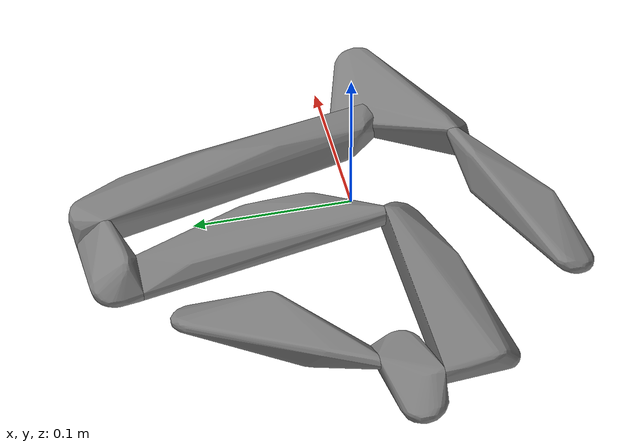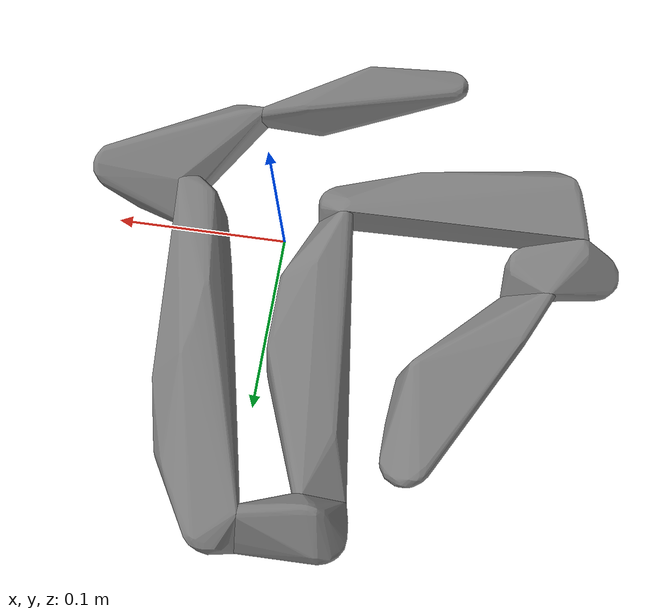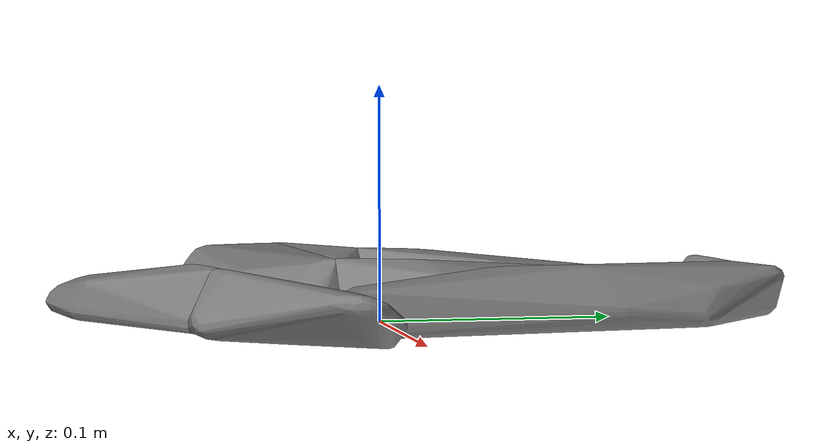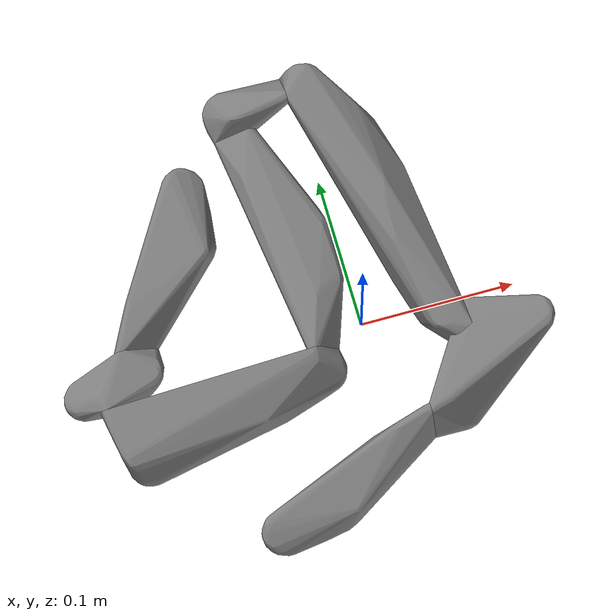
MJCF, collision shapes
<mujoco model="ycb_059_chain">
  <compiler meshdir="meshes" texturedir="meshes" angle="radian"/>
  <default>
    <default class="visual"><geom contype="0" conaffinity="0" group="2" density="0"/></default>
    <default class="collision"><geom group="3"/></default>
  </default>
  <asset>
    <texture name="ycb_059_chain_tex" type="2d" file="ycb_059_chain_texture.png"/>
    <material name="ycb_059_chain_mat" texture="ycb_059_chain_tex" specular="0.2" shininess="0.3"/>
    <mesh name="ycb_059_chain_visual" file="ycb_059_chain_visual.obj"/>
    <mesh name="ycb_059_chain_hull0" file="ycb_059_chain_hull0.obj"/>
    <mesh name="ycb_059_chain_hull1" file="ycb_059_chain_hull1.obj"/>
    <mesh name="ycb_059_chain_hull2" file="ycb_059_chain_hull2.obj"/>
    <mesh name="ycb_059_chain_hull3" file="ycb_059_chain_hull3.obj"/>
    <mesh name="ycb_059_chain_hull4" file="ycb_059_chain_hull4.obj"/>
    <mesh name="ycb_059_chain_hull5" file="ycb_059_chain_hull5.obj"/>
    <mesh name="ycb_059_chain_hull6" file="ycb_059_chain_hull6.obj"/>
    <mesh name="ycb_059_chain_hull7" file="ycb_059_chain_hull7.obj"/>
  </asset>
  <worldbody>
    <body name="object" pos="0 0 0">
      <freejoint name="object_free"/>
      <geom type="mesh" mesh="ycb_059_chain_visual" material="ycb_059_chain_mat" class="visual"/>
      <geom type="mesh" mesh="ycb_059_chain_hull0" class="collision"/>
      <geom type="mesh" mesh="ycb_059_chain_hull1" class="collision"/>
      <geom type="mesh" mesh="ycb_059_chain_hull2" class="collision"/>
      <geom type="mesh" mesh="ycb_059_chain_hull3" class="collision"/>
      <geom type="mesh" mesh="ycb_059_chain_hull4" class="collision"/>
      <geom type="mesh" mesh="ycb_059_chain_hull5" class="collision"/>
      <geom type="mesh" mesh="ycb_059_chain_hull6" class="collision"/>
      <geom type="mesh" mesh="ycb_059_chain_hull7" class="collision"/>
    </body>
  </worldbody>
</mujoco>
